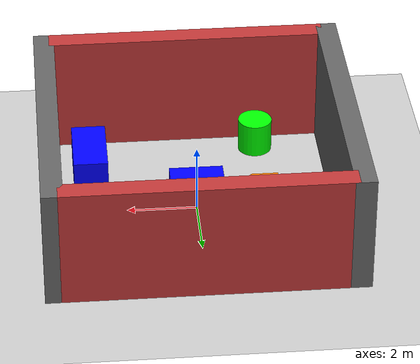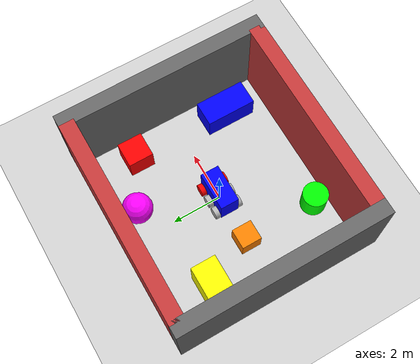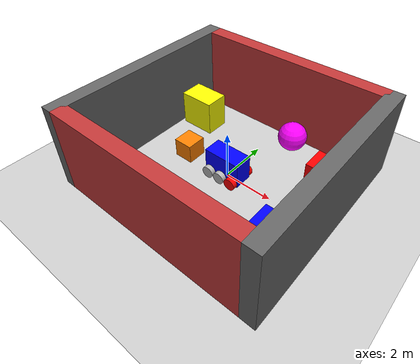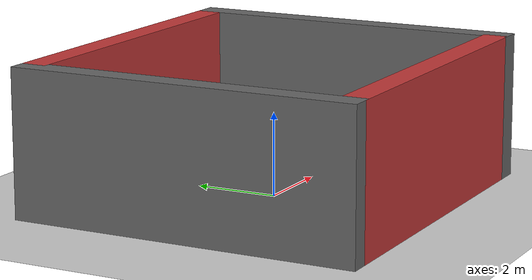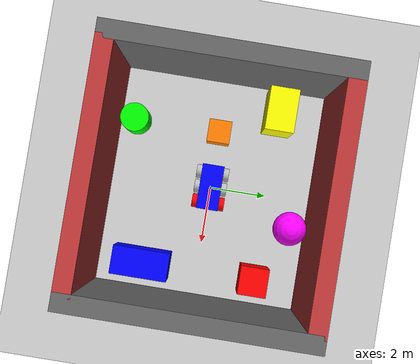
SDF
<?xml version="1.0" ?>
<sdf version="1.10">
  <world name="room">
    <physics name="1ms" type="ignored">
      <max_step_size>0.001</max_step_size>
      <real_time_factor>1.0</real_time_factor>
    </physics>

    <plugin filename="gz-sim-physics-system" name="gz::sim::systems::Physics"/>
    <plugin filename="gz-sim-user-commands-system" name="gz::sim::systems::UserCommands"/>
    <plugin filename="gz-sim-scene-broadcaster-system" name="gz::sim::systems::SceneBroadcaster"/>
    <plugin filename="gz-sim-imu-system" name="gz::sim::systems::Imu"/>
    <plugin filename="gz-sim-sensors-system" name="gz::sim::systems::Sensors">
      <render_engine>ogre2</render_engine>
    </plugin>

    <!-- GUI for Visualizing Lidar Beams -->

    <light type="directional" name="sun">
      <cast_shadows>true</cast_shadows>
      <pose>0 0 10 0 0 0</pose>
      <diffuse>0.8 0.8 0.8 1</diffuse>
      <specular>0.2 0.2 0.2 1</specular>
      <attenuation>
        <range>1000</range>
        <constant>0.9</constant>
        <linear>0.01</linear>
        <quadratic>0.001</quadratic>
      </attenuation>
      <direction>-0.5 0.1 -0.9</direction>
    </light>

    <model name="ground_plane">
      <static>true</static>
      <link name="link">
        <collision name="collision">
          <geometry>
            <plane>
              <normal>0 0 1</normal>
            </plane>
          </geometry>
        </collision>
        <visual name="visual">
          <geometry>
            <plane>
              <normal>0 0 1</normal>
              <size>100 100</size>
            </plane>
          </geometry>
          <material>
            <ambient>0.8 0.8 0.8 1</ambient>
            <diffuse>0.8 0.8 0.8 1</diffuse>
            <specular>0.8 0.8 0.8 1</specular>
          </material>
        </visual>
      </link>
    </model>

    <!-- Include FLIP here when needed -->

    <include>
			<uri>file:///workspace/prototypes/ackermannSteering/flip/ackermannSteering.sdf</uri>
      <name>FLIP</name>
      <pose>0 0 0 0 0 0</pose>
    </include>

    <!-- Walls -->
    <include>
      <uri>file:///workspace/models/gazebo/obstakels/walls/horizontalWall8_4x0_6x3_5.sdf</uri>
      <name>frontWall</name>
      <pose>4.2 0 1.75 0 0 0</pose>
    </include>

    <include>
      <uri>file:///workspace/models/gazebo/obstakels/walls/horizontalWall8_4x0_6x3_5.sdf</uri>
      <name>backWall</name>
      <pose>-4.2 0 1.75 0 0 0</pose>
    </include>

    <include>
      <uri>file:///workspace/models/gazebo/obstakels/walls/verticalWall0_6x8_1x3_5.sdf</uri>
      <name>leftWall</name>
      <pose>0 -3.9 1.75 0 0 1.5708</pose>
    </include>

    <include>
      <uri>file:///workspace/models/gazebo/obstakels/walls/verticalWall0_6x8_1x3_5.sdf</uri>
      <name>rightWall</name>
      <pose>0 3.9 1.75 0 0 1.5708</pose>
    </include>

    <!-- Objects -->
    <include>
      <uri>file:///workspace/models/gazebo/obstakels/shapes/redCube1x1x1.sdf</uri>
      <name>redCube</name>
      <pose>3 2 0.5 0 0 0</pose>
    </include>

    <include>
      <uri>file:///workspace/models/gazebo/obstakels/shapes/greenCylinder0_5x1.sdf</uri>
      <name>greenCylinder</name>
      <pose>-2 -3 0.5 0 0 0</pose>
    </include>

    <include>
      <uri>file:///workspace/models/gazebo/obstakels/shapes/blueBox1x2x1.sdf</uri>
      <name>blueBox</name>
      <pose>3 -2 0.5 0 0 0</pose>
    </include>

    <include>
      <uri>file:///workspace/models/gazebo/obstakels/shapes/yellowBox1_5x1x1_5.sdf</uri>
      <name>yellowBox</name>
      <pose>-3 2 0.75 0 0 0</pose>
    </include>

    <include>
      <uri>file:///workspace/models/gazebo/obstakels/shapes/pinkBall0_6.sdf</uri>
      <name>pinkBall</name>
      <pose>1 3 0.6 0 0 0</pose>
    </include>

    <include>
      <uri>file:///workspace/models/gazebo/obstakels/shapes/orangeBox0_8x0_8x0_8.sdf</uri>
      <name>orangeBox</name>
      <pose>-2 0 0.4 0 0 0</pose>
    </include>

  </world>
</sdf>

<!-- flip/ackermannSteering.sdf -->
<sdf version="1.10">
  <model name='FLIP' canonical_link='chassis'>
    <pose>0 0 0 0 0 0</pose>

    <link name='chassis'>
      <pose relative_to='__model__'>0 0 0.625 0 0 0</pose>
      <inertial>
        <pose>0 0 0 0 0 0</pose>
        <mass>450.0</mass>
        <inertia>
          <ixx>62.438</ixx>
          <ixy>0</ixy>
          <ixz>0</ixz>
          <iyy>131.438</iyy>
          <iyz>0</iyz>
          <izz>111.188</izz>
        </inertia>
      </inertial>
      <visual name='visual'>
        <geometry><box><size>1.55 0.75 1.05</size></box></geometry>
        <material>
          <ambient>0.0 0.0 1.0 1</ambient>
          <diffuse>0.0 0.0 1.0 1</diffuse>
          <specular>0.0 0.0 1.0 1</specular>
        </material>
      </visual>
      <collision name='collision'>
        <geometry><box><size>1.55 0.75 1.05</size></box></geometry>
      </collision>
      <sensor name="imu_sensor" type="imu">
        <always_on>1</always_on>
        <update_rate>20</update_rate>
        <visualize>true</visualize>
        <topic>imu</topic>
      </sensor>
      <sensor name="gpu_lidar" type="gpu_lidar">
        <pose>0.6 0 0.3 0 0 0</pose>
        <always_on>1</always_on>
        <update_rate>10</update_rate>
        <lidar>
          <scan>
            <horizontal>
              <samples>640</samples>
              <resolution>1</resolution>
              <min_angle>-1.396263</min_angle>
              <max_angle>1.396263</max_angle>
            </horizontal>
            <vertical>
              <samples>1</samples>
              <resolution>1</resolution>
              <min_angle>0</min_angle>
              <max_angle>0</max_angle>
            </vertical>
          </scan>
          <range>
            <min>0.08</min>
            <max>10.0</max>
            <resolution>0.01</resolution>
          </range>
        </lidar>
        <visualize>true</visualize>
        <topic>lidar</topic>
      </sensor>
    </link>

    <link name='left_back_wheel'>
      <pose relative_to="chassis">-0.533 0.475 -0.383 -1.5707 0 0</pose>
      <inertial><mass>5</mass><inertia><ixx>0.694</ixx><ixy>0</ixy><ixz>0</ixz><iyy>1.460</iyy><iyz>0</iyz><izz>1.235</izz></inertia></inertial>
      <visual name='visual'><geometry><cylinder><radius>0.242</radius><length>0.2</length></cylinder></geometry></visual>
      <collision name='collision'><geometry><cylinder><radius>0.242</radius><length>0.2</length></cylinder></geometry></collision>
    </link>

    <link name='left_middle_wheel'>
      <pose relative_to="chassis">0 0.475 -0.383 -1.5707 0 0</pose>
      <inertial><mass>5</mass><inertia><ixx>0.694</ixx><ixy>0</ixy><ixz>0</ixz><iyy>1.460</iyy><iyz>0</iyz><izz>1.235</izz></inertia></inertial>
      <visual name='visual'><geometry><cylinder><radius>0.242</radius><length>0.2</length></cylinder></geometry></visual>
      <collision name='collision'><geometry><cylinder><radius>0.242</radius><length>0.2</length></cylinder></geometry></collision>
    </link>

    <link name='right_back_wheel'>
      <pose relative_to="chassis">-0.533 -0.475 -0.383 -1.5707 0 0</pose>
      <inertial><mass>5</mass><inertia><ixx>0.694</ixx><ixy>0</ixy><ixz>0</ixz><iyy>1.460</iyy><iyz>0</iyz><izz>1.235</izz></inertia></inertial>
      <visual name='visual'><geometry><cylinder><radius>0.242</radius><length>0.2</length></cylinder></geometry></visual>
      <collision name='collision'><geometry><cylinder><radius>0.242</radius><length>0.2</length></cylinder></geometry></collision>
    </link>

    <link name='right_middle_wheel'>
      <pose relative_to="chassis">0 -0.475 -0.383 -1.5707 0 0</pose>
      <inertial><mass>5</mass><inertia><ixx>0.694</ixx><ixy>0</ixy><ixz>0</ixz><iyy>1.460</iyy><iyz>0</iyz><izz>1.235</izz></inertia></inertial>
      <visual name='visual'><geometry><cylinder><radius>0.242</radius><length>0.2</length></cylinder></geometry></visual>
      <collision name='collision'><geometry><cylinder><radius>0.242</radius><length>0.2</length></cylinder></geometry></collision>
    </link>

    <link name='left_front_steer_link'>
      <pose relative_to="chassis">0.533 0.475 -0.383 0 0 0</pose>
      <inertial><mass>1.0</mass><inertia><ixx>0.01</ixx><ixy>0</ixy><ixz>0</ixz><iyy>0.01</iyy><iyz>0</iyz><izz>0.01</izz></inertia></inertial>
    </link>

    <link name='right_front_steer_link'>
      <pose relative_to="chassis">0.533 -0.475 -0.383 0 0 0</pose>
      <inertial><mass>1.0</mass><inertia><ixx>0.01</ixx><ixy>0</ixy><ixz>0</ixz><iyy>0.01</iyy><iyz>0</iyz><izz>0.01</izz></inertia></inertial>
    </link>

    <link name='left_front_wheel'>
      <pose relative_to="left_front_steer_link">0 0 0 -1.5707 0 0</pose>
      <inertial><mass>5</mass><inertia><ixx>0.694</ixx><ixy>0</ixy><ixz>0</ixz><iyy>1.460</iyy><iyz>0</iyz><izz>1.235</izz></inertia></inertial>
      <visual name='visual'>
        <geometry><cylinder><radius>0.242</radius><length>0.2</length></cylinder></geometry>
        <material><ambient>1.0 0.0 0.0 1</ambient><diffuse>1.0 0.0 0.0 1</diffuse><specular>1.0 0.0 0.0 1</specular></material>
      </visual>
      <collision name='collision'><geometry><cylinder><radius>0.242</radius><length>0.2</length></cylinder></geometry></collision>
    </link>

    <link name='right_front_wheel'>
      <pose relative_to="right_front_steer_link">0 0 0 -1.5707 0 0</pose>
      <inertial><mass>5</mass><inertia><ixx>0.694</ixx><ixy>0</ixy><ixz>0</ixz><iyy>1.460</iyy><iyz>0</iyz><izz>1.235</izz></inertia></inertial>
      <visual name='visual'>
        <geometry><cylinder><radius>0.242</radius><length>0.2</length></cylinder></geometry>
        <material><ambient>1.0 0.0 0.0 1</ambient><diffuse>1.0 0.0 0.0 1</diffuse><specular>1.0 0.0 0.0 1</specular></material>
      </visual>
      <collision name='collision'><geometry><cylinder><radius>0.242</radius><length>0.2</length></cylinder></geometry></collision>
    </link>

    <joint name='left_back_wheel_joint' type='revolute'>
      <parent>chassis</parent><child>left_back_wheel</child>
      <axis><xyz expressed_in='__model__'>0 1 0</xyz><limit><lower>-1.79769e+308</lower><upper>1.79769e+308</upper></limit></axis>
    </joint>
    <joint name='left_middle_wheel_joint' type='revolute'>
      <parent>chassis</parent><child>left_middle_wheel</child>
      <axis><xyz expressed_in='__model__'>0 1 0</xyz><limit><lower>-1.79769e+308</lower><upper>1.79769e+308</upper></limit></axis>
    </joint>
    <joint name='right_back_wheel_joint' type='revolute'>
      <parent>chassis</parent><child>right_back_wheel</child>
      <axis><xyz expressed_in='__model__'>0 1 0</xyz><limit><lower>-1.79769e+308</lower><upper>1.79769e+308</upper></limit></axis>
    </joint>
    <joint name='right_middle_wheel_joint' type='revolute'>
      <parent>chassis</parent><child>right_middle_wheel</child>
      <axis><xyz expressed_in='__model__'>0 1 0</xyz><limit><lower>-1.79769e+308</lower><upper>1.79769e+308</upper></limit></axis>
    </joint>
    <joint name='left_front_steering_joint' type='revolute'>
      <parent>chassis</parent><child>left_front_steer_link</child>
      <axis><xyz expressed_in='__model__'>0 0 1</xyz><limit><lower>-1.0</lower><upper>1.0</upper><effort>1000000</effort></limit></axis>
    </joint>
    <joint name='right_front_steering_joint' type='revolute'>
      <parent>chassis</parent><child>right_front_steer_link</child>
      <axis><xyz expressed_in='__model__'>0 0 1</xyz><limit><lower>-1.0</lower><upper>1.0</upper><effort>1000000</effort></limit></axis>
    </joint>
    <joint name='left_front_wheel_joint' type='revolute'>
      <parent>left_front_steer_link</parent><child>left_front_wheel</child>
      <axis><xyz expressed_in='__model__'>0 1 0</xyz><limit><lower>-1.79769e+308</lower><upper>1.79769e+308</upper></limit></axis>
    </joint>
    <joint name='right_front_wheel_joint' type='revolute'>
      <parent>right_front_steer_link</parent><child>right_front_wheel</child>
      <axis><xyz expressed_in='__model__'>0 1 0</xyz><limit><lower>-1.79769e+308</lower><upper>1.79769e+308</upper></limit></axis>
    </joint>

    <plugin filename="gz-sim-ackermann-steering-system" name="gz::sim::systems::AckermannSteering">
      <left_joint>left_back_wheel_joint</left_joint>
      <left_joint>left_middle_wheel_joint</left_joint>
      <left_joint>left_front_wheel_joint</left_joint>
      <right_joint>right_back_wheel_joint</right_joint>
      <right_joint>right_middle_wheel_joint</right_joint>
      <right_joint>right_front_wheel_joint</right_joint>
      <left_steering_joint>left_front_steering_joint</left_steering_joint>
      <right_steering_joint>right_front_steering_joint</right_steering_joint>
      <wheel_base>1.066</wheel_base>
      <wheel_separation>0.95</wheel_separation>
      <kingpin_width>0.95</kingpin_width>
      <wheel_radius>0.242</wheel_radius>
      <steering_limit>1.2</steering_limit>
      <topic>/model/FLIP/cmd_vel</topic>
      <odom_topic>/model/FLIP/odometry</odom_topic>
      <tf_topic>/model/FLIP/tf</tf_topic>
      <frame_id>odom</frame_id>
      <child_frame_id>base_link</child_frame_id>
      <odom_publish_frequency>10</odom_publish_frequency>

      <!-- Uncomment for smoother motion -->
    </plugin>
  </model>
</sdf>

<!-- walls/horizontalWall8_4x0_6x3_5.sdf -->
<sdf version="1.10">
    <model name="horizontalWall8_4x0_6x3_5">
      <static>true</static>
      <pose>4.2 0 1.75 0 0 0</pose>
      <link name="link">
        <collision name="collision">
          <geometry><box><size>0.6 8.4 3.5</size></box></geometry>
        </collision>
        <visual name="visual">
          <geometry><box><size>0.6 8.4 3.5</size></box></geometry>
          <material>
            <ambient>0.4 0.4 0.4 1</ambient>
            <diffuse>0.4 0.4 0.4 1</diffuse>
            <specular>0.2 0.2 0.2 1</specular>
          </material>
        </visual>
      </link>
    </model>
</sdf>

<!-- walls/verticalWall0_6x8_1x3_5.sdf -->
<sdf version="1.10">
    <model name="verticalWall0_6x8_1x3_5">
      <static>true</static>
      <pose>0 3.9 1.75 0 0 1.5708</pose>
      <link name="link">
        <collision name="collision">
          <geometry><box><size>0.6 8.1 3.5</size></box></geometry>
        </collision>
        <visual name="visual">
          <geometry><box><size>0.6 8.1 3.5</size></box></geometry>
          <material>
            <ambient>0.76 0.22 0.22 1</ambient>
            <diffuse>0.76 0.22 0.22 1</diffuse>
            <specular>0.56 0.44 0.44 1</specular>
          </material>
        </visual>
      </link>
    </model>
</sdf>

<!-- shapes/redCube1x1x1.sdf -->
<sdf version="1.10">
    <model name="redCube1x1x1">
      <static>true</static>
      <pose>3 2 0.5 0 0 0</pose>
      <link name="link">
        <collision name="collision">
          <geometry><box><size>1 1 1</size></box></geometry>
        </collision>
        <visual name="visual">
          <geometry><box><size>1 1 1</size></box></geometry>
          <material>
            <ambient>1 0 0 1</ambient>
            <diffuse>1 0 0 1</diffuse>
            <specular>0.5 0.5 0.5 1</specular>
          </material>
        </visual>
      </link>
    </model>
</sdf>

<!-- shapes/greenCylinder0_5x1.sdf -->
<sdf version="1.10">
    <model name="greenCylinder0_5x1">
      <static>true</static>
      <pose>-2 -3 0.5 0 0 0</pose>
      <link name="link">
        <collision name="collision">
          <geometry><cylinder><radius>0.5</radius><length>1.0</length></cylinder></geometry>
        </collision>
        <visual name="visual">
          <geometry><cylinder><radius>0.5</radius><length>1.0</length></cylinder></geometry>
          <material><ambient>0 1 0 1</ambient><diffuse>0 1 0 1</diffuse></material>
        </visual>
      </link>
    </model>
</sdf>

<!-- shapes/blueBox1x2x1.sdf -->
<sdf version="1.10">
    <model name="blueBox1x2x1">
      <static>true</static>
      <pose>3 -2 0.5 0 0 0</pose>
      <link name="link">
        <collision name="collision">
          <geometry><box><size>1 2 1</size></box></geometry>
        </collision>
        <visual name="visual">
          <geometry><box><size>1 2 1</size></box></geometry>
          <material><ambient>0 0 1 1</ambient><diffuse>0 0 1 1</diffuse></material>
        </visual>
      </link>
    </model>
</sdf>

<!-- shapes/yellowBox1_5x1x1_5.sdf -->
<sdf version="1.10">
    <model name="yellowBox1_5x1x1_5">
      <static>true</static>
      <pose>-3 2 0.75 0 0 0</pose>
      <link name="link">
        <collision name="collision">
          <geometry><box><size>1.5 1 1.5</size></box></geometry>
        </collision>
        <visual name="visual">
          <geometry><box><size>1.5 1 1.5</size></box></geometry>
          <material><ambient>1 1 0 1</ambient><diffuse>1 1 0 1</diffuse></material>
        </visual>
      </link>
    </model>
</sdf>

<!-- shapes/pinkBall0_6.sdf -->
<sdf version="1.10">
    <model name="pinkBall0_6">
      <static>true</static>
      <pose>1 3 0.6 0 0 0</pose>
      <link name="link">
        <collision name="collision">
          <geometry><sphere><radius>0.6</radius></sphere></geometry>
        </collision>
        <visual name="visual">
          <geometry><sphere><radius>0.6</radius></sphere></geometry>
          <material><ambient>1 0 1 1</ambient><diffuse>1 0 1 1</diffuse></material>
        </visual>
      </link>
    </model>
</sdf>

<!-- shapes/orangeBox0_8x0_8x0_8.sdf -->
<sdf version="1.10">
    <model name="orangeBox0_8x0_8x0_8">
      <static>true</static>
      <pose>-2 0 0.4 0 0 0</pose>
      <link name="link">
        <collision name="collision">
          <geometry><box><size>0.8 0.8 0.8</size></box></geometry>
        </collision>
        <visual name="visual">
          <geometry><box><size>0.8 0.8 0.8</size></box></geometry>
          <material><ambient>1 0.5 0 1</ambient><diffuse>1 0.5 0 1</diffuse></material>
        </visual>
      </link>
    </model>
</sdf>
